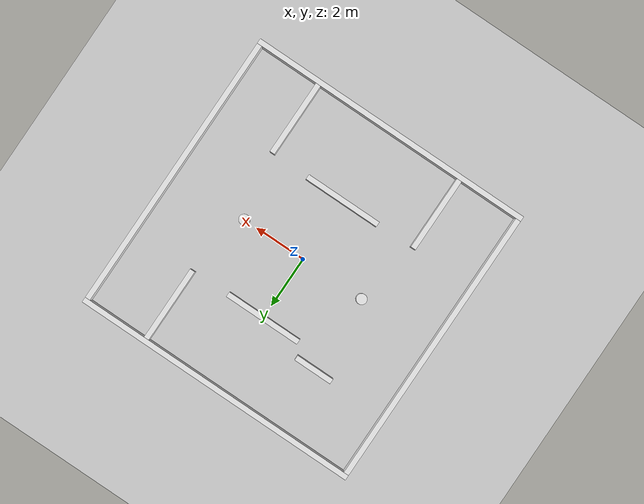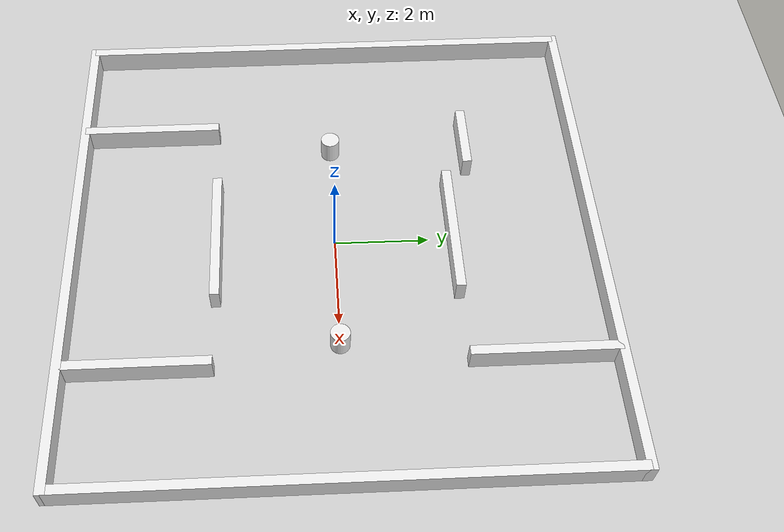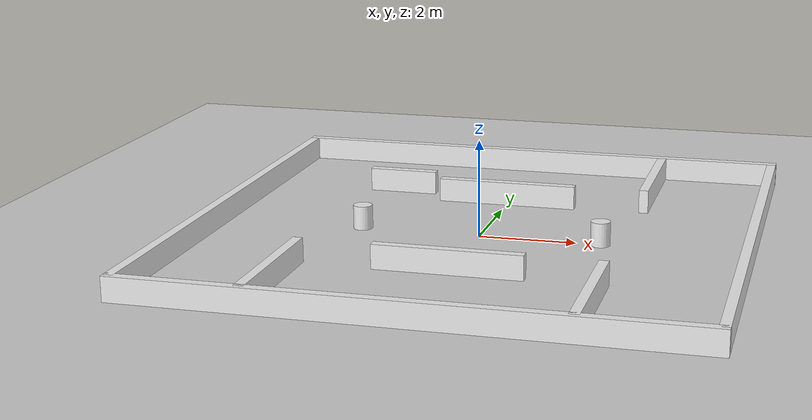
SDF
<?xml version="1.0"?>
<sdf version="1.6">
  <world name="default">
    <plugin name="gazebo_ros_state" filename="libgazebo_ros_state.so">
      <ros>
        <namespace>/gazebo</namespace>
      </ros>
    </plugin>
    <include>
      <uri>model://sun</uri>
    </include>
    <include>
      <uri>model://ground_plane</uri>
    </include>

    <physics type="ode">
      <real_time_update_rate>100</real_time_update_rate>
      <max_step_size>0.01</max_step_size>
      <real_time_factor>0</real_time_factor>
    </physics>

    <model name="outer_wall_top">
      <pose>0 5.5 0.25 0 0 0</pose>
      <static>true</static>
      <link name="link"><collision name="col"><geometry><box><size>11.2 0.2 0.5</size></box></geometry></collision><visual name="vis"><geometry><box><size>11.2 0.2 0.5</size></box></geometry><material><script><uri>file://media/materials/scripts/gazebo.material</uri><name>Gazebo/White</name></script></material></visual></link>
    </model>

    <model name="outer_wall_bottom">
      <pose>0 -5.5 0.25 0 0 0</pose>
      <static>true</static>
      <link name="link"><collision name="col"><geometry><box><size>11.2 0.2 0.5</size></box></geometry></collision><visual name="vis"><geometry><box><size>11.2 0.2 0.5</size></box></geometry><material><script><uri>file://media/materials/scripts/gazebo.material</uri><name>Gazebo/White</name></script></material></visual></link>
    </model>

    <model name="outer_wall_left">
      <pose>5.5 0 0.25 0 0 0</pose>
      <static>true</static>
      <link name="link"><collision name="col"><geometry><box><size>0.2 11.0 0.5</size></box></geometry></collision><visual name="vis"><geometry><box><size>0.2 11.0 0.5</size></box></geometry><material><script><uri>file://media/materials/scripts/gazebo.material</uri><name>Gazebo/White</name></script></material></visual></link>
    </model>

    <model name="outer_wall_right">
      <pose>-5.5 0 0.25 0 0 0</pose>
      <static>true</static>
      <link name="link"><collision name="col"><geometry><box><size>0.2 11.0 0.5</size></box></geometry></collision><visual name="vis"><geometry><box><size>0.2 11.0 0.5</size></box></geometry><material><script><uri>file://media/materials/scripts/gazebo.material</uri><name>Gazebo/White</name></script></material></visual></link>
    </model>

    <model name="wall_center_top">
      <pose>0 2.5 0.25 0 0 0</pose>
      <static>true</static>
      <link name="link"><collision name="col"><geometry><box><size>3.0 0.2 0.5</size></box></geometry></collision><visual name="vis"><geometry><box><size>3.0 0.2 0.5</size></box></geometry><material><script><uri>file://media/materials/scripts/gazebo.material</uri><name>Gazebo/White</name></script></material></visual></link>
    </model>

    <model name="wall_center_bottom">
      <pose>0 -2.5 0.25 0 0 0</pose>
      <static>true</static>
      <link name="link"><collision name="col"><geometry><box><size>3.0 0.2 0.5</size></box></geometry></collision><visual name="vis"><geometry><box><size>3.0 0.2 0.5</size></box></geometry><material><script><uri>file://media/materials/scripts/gazebo.material</uri><name>Gazebo/White</name></script></material></visual></link>
    </model>

    <model name="wall_top_left_vert">
      <pose>3.0 4.0 0.25 0 0 0</pose>
      <static>true</static>
      <link name="link"><collision name="col"><geometry><box><size>0.2 3.0 0.5</size></box></geometry></collision><visual name="vis"><geometry><box><size>0.2 3.0 0.5</size></box></geometry><material><script><uri>file://media/materials/scripts/gazebo.material</uri><name>Gazebo/White</name></script></material></visual></link>
    </model>

    <model name="wall_bottom_left">
      <pose>3.0 -4.0 0.25 0 0 0</pose>
      <static>true</static>
      <link name="link"><collision name="col"><geometry><box><size>0.2 3.0 0.5</size></box></geometry></collision><visual name="vis"><geometry><box><size>0.2 3.0 0.5</size></box></geometry><material><script><uri>file://media/materials/scripts/gazebo.material</uri><name>Gazebo/White</name></script></material></visual></link>
    </model>

    <model name="wall_top_right">
      <pose>-2.5 3.0 0.25 0 0 0</pose>
      <static>true</static>
      <link name="link"><collision name="col"><geometry><box><size>1.5 0.2 0.5</size></box></geometry></collision><visual name="vis"><geometry><box><size>1.5 0.2 0.5</size></box></geometry><material><script><uri>file://media/materials/scripts/gazebo.material</uri><name>Gazebo/White</name></script></material></visual></link>
    </model>

    <model name="wall_bottom_right_vert">
      <pose>-3.0 -4.0 0.25 0 0 0</pose>
      <static>true</static>
      <link name="link"><collision name="col"><geometry><box><size>0.2 3.0 0.5</size></box></geometry></collision><visual name="vis"><geometry><box><size>0.2 3.0 0.5</size></box></geometry><material><script><uri>file://media/materials/scripts/gazebo.material</uri><name>Gazebo/White</name></script></material></visual></link>
    </model>

 <model name="obs_1">
      <pose>2.5 0 0.25 0 0 0</pose>
      <link name="link">

        <kinematic>1</kinematic>
        <gravity>0</gravity>

        <inertial><mass>1.0</mass><inertia><ixx>0.1</ixx><iyy>0.1</iyy><izz>0.1</izz></inertia></inertial>
        <collision name="col"><geometry><cylinder><radius>0.2</radius><length>0.5</length></cylinder></geometry></collision>
        <visual name="vis"><geometry><cylinder><radius>0.2</radius><length>0.5</length></cylinder></geometry><material><script><uri>file://media/materials/scripts/gazebo.material</uri><name>Gazebo/White</name></script></material></visual>
      </link>
      <plugin name="mover" filename="libgazebo_ros_planar_move.so">
        <ros><namespace>/obs1</namespace></ros>
        <update_rate>100</update_rate><publish_odom>false</publish_odom>
      </plugin>
    </model>

    <model name="obs_2">
      <pose>-2.5 0 0.25 0 0 0</pose>
      <static>false</static>
      <link name="link">

        <kinematic>1</kinematic>
        <gravity>0</gravity>

        <inertial><mass>1.0</mass><inertia><ixx>0.1</ixx><iyy>0.1</iyy><izz>0.1</izz></inertia></inertial>
        <collision name="col"><geometry><cylinder><radius>0.2</radius><length>0.5</length></cylinder></geometry></collision>
        <visual name="vis"><geometry><cylinder><radius>0.2</radius><length>0.5</length></cylinder></geometry><material><script><uri>file://media/materials/scripts/gazebo.material</uri><name>Gazebo/White</name></script></material></visual>
      </link>
      <plugin name="mover" filename="libgazebo_ros_planar_move.so">
        <ros><namespace>/obs2</namespace></ros>
        <update_rate>100</update_rate><publish_odom>false</publish_odom>
      </plugin>
    </model>

  </world>
</sdf>
